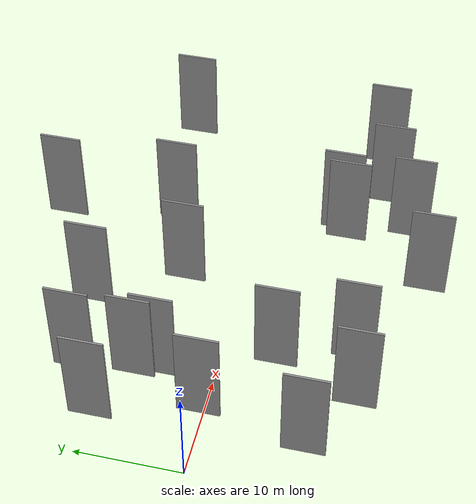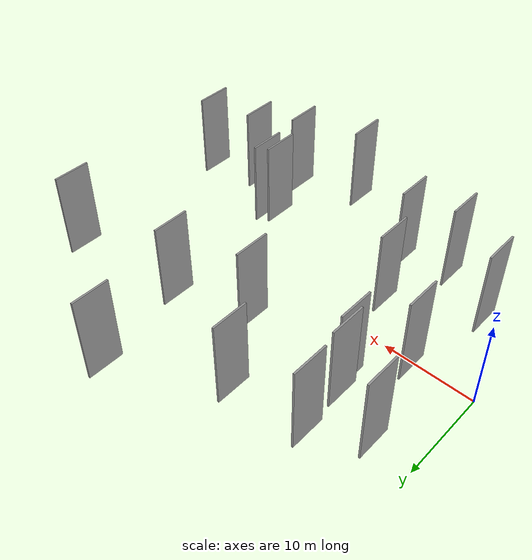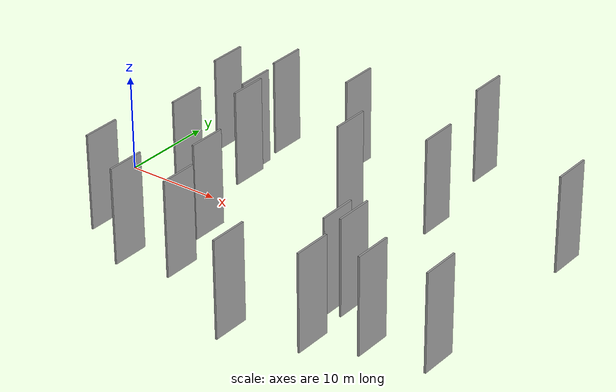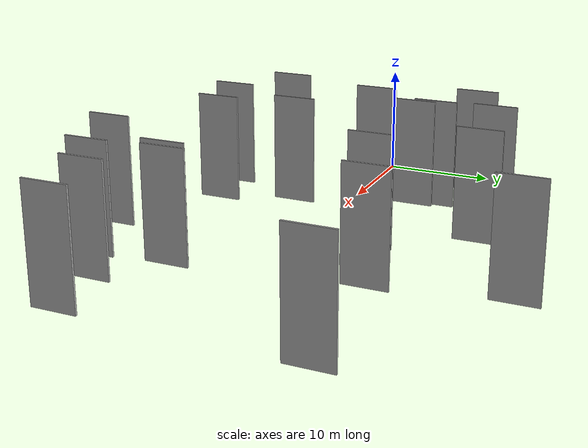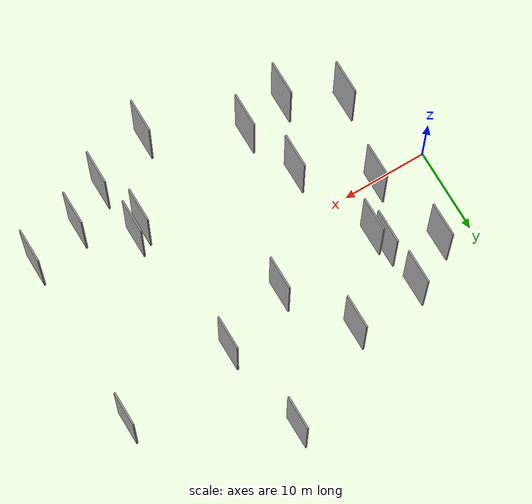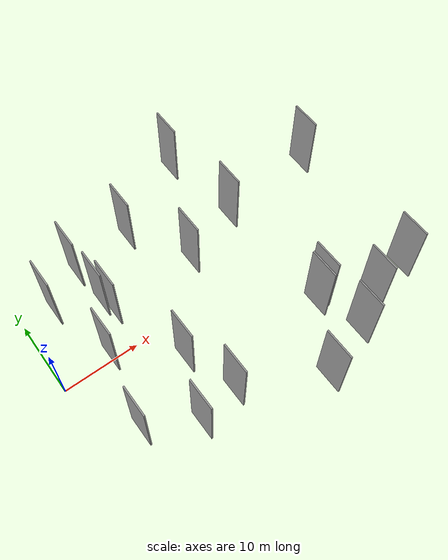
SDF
<sdf version="1.6">
 <world name="default">
  <scene>
   <sky><clouds><speed>12</speed></clouds></sky>
   <ambient>0.4 0.4 0.4 1</ambient>
   <background>0.7 0.7 0.7 1</background>
   <shadows>1</shadows>
  </scene>
  <gravity>0 0 -9.8066</gravity>
  <magnetic_field>6e-06 2.3e-05 -4.2e-05</magnetic_field>
  <physics default="0" name="default_physics" type="ode">
   <ode>
    <solver>
     <type>quick</type>
     <iters>10</iters>
     <sor>1.0</sor>
     <use_dynamic_moi_rescaling>0</use_dynamic_moi_rescaling>
    </solver>
    <constraints>
     <cfm>0</cfm>
     <erp>0.2</erp>
     <contact_max_correcting_vel>100</contact_max_correcting_vel>
     <contact_surface_layer>0.001</contact_surface_layer>
    </constraints>
   </ode>
   <max_step_size>0.004</max_step_size>
   <real_time_factor>1</real_time_factor>
   <real_time_update_rate>250</real_time_update_rate>
  </physics>
  <light name="sun" type="directional">
   <pose>0 0 10 0 0 0</pose>
   <diffuse>0.8 0.8 0.8 1</diffuse>
   <specular>0.2 0.2 0.2 1</specular>
   <attenuation>
    <range>1000</range>
    <constant>0.9</constant>
    <linear>0.01</linear>
    <quadratic>0.001</quadratic>
   </attenuation>
   <direction>-0.5 0.1 -0.9</direction>
  </light>
  <model name="grey_wall_1">
   <static>1</static>
   <pose>37.4713 -11.7446 0.0 0.000000 0.000000 1.570796</pose>
   <link name="link">
    <pose>0 0 5.00 0 0 0</pose>
    <collision name="collision"><geometry><box><size>4.00 0.2 10.00</size></box></geometry></collision>
    <visual name="visual">
     <cast_shadows>0</cast_shadows>
     <geometry><box><size>4.00 0.2 10.00</size></box></geometry>
     <material>
      <script>
       <uri>model://grey_wall/materials/scripts</uri>
       <uri>model://grey_wall/materials/textures</uri>
       <name>vrc/grey_wall</name>
      </script>
     </material>
    </visual>
   </link>
  </model>
  <model name="grey_wall_2">
   <static>1</static>
   <pose>31.2483 -8.3936 0.0 0.000000 0.000000 1.570796</pose>
   <link name="link">
    <pose>0 0 5.00 0 0 0</pose>
    <collision name="collision"><geometry><box><size>4.00 0.2 10.00</size></box></geometry></collision>
    <visual name="visual">
     <cast_shadows>0</cast_shadows>
     <geometry><box><size>4.00 0.2 10.00</size></box></geometry>
     <material>
      <script>
       <uri>model://grey_wall/materials/scripts</uri>
       <uri>model://grey_wall/materials/textures</uri>
       <name>vrc/grey_wall</name>
      </script>
     </material>
    </visual>
   </link>
  </model>
  <model name="grey_wall_3">
   <static>1</static>
   <pose>32.4895 -7.6483 0.0 0.000000 0.000000 1.570796</pose>
   <link name="link">
    <pose>0 0 5.00 0 0 0</pose>
    <collision name="collision"><geometry><box><size>4.00 0.2 10.00</size></box></geometry></collision>
    <visual name="visual">
     <cast_shadows>0</cast_shadows>
     <geometry><box><size>4.00 0.2 10.00</size></box></geometry>
     <material>
      <script>
       <uri>model://grey_wall/materials/scripts</uri>
       <uri>model://grey_wall/materials/textures</uri>
       <name>vrc/grey_wall</name>
      </script>
     </material>
    </visual>
   </link>
  </model>
  <model name="grey_wall_4">
   <static>1</static>
   <pose>43.5361 -10.4436 0.0 0.000000 0.000000 1.570796</pose>
   <link name="link">
    <pose>0 0 5.00 0 0 0</pose>
    <collision name="collision"><geometry><box><size>4.00 0.2 10.00</size></box></geometry></collision>
    <visual name="visual">
     <cast_shadows>0</cast_shadows>
     <geometry><box><size>4.00 0.2 10.00</size></box></geometry>
     <material>
      <script>
       <uri>model://grey_wall/materials/scripts</uri>
       <uri>model://grey_wall/materials/textures</uri>
       <name>vrc/grey_wall</name>
      </script>
     </material>
    </visual>
   </link>
  </model>
  <model name="grey_wall_5">
   <static>1</static>
   <pose>33.0475 -14.4032 0.0 0.000000 0.000000 1.570796</pose>
   <link name="link">
    <pose>0 0 5.00 0 0 0</pose>
    <collision name="collision"><geometry><box><size>4.00 0.2 10.00</size></box></geometry></collision>
    <visual name="visual">
     <cast_shadows>0</cast_shadows>
     <geometry><box><size>4.00 0.2 10.00</size></box></geometry>
     <material>
      <script>
       <uri>model://grey_wall/materials/scripts</uri>
       <uri>model://grey_wall/materials/textures</uri>
       <name>vrc/grey_wall</name>
      </script>
     </material>
    </visual>
   </link>
  </model>
  <model name="grey_wall_6">
   <static>1</static>
   <pose>22.1428 5.8418 0.0 0.000000 0.000000 1.570796</pose>
   <link name="link">
    <pose>0 0 5.00 0 0 0</pose>
    <collision name="collision"><geometry><box><size>4.00 0.2 10.00</size></box></geometry></collision>
    <visual name="visual">
     <cast_shadows>0</cast_shadows>
     <geometry><box><size>4.00 0.2 10.00</size></box></geometry>
     <material>
      <script>
       <uri>model://grey_wall/materials/scripts</uri>
       <uri>model://grey_wall/materials/textures</uri>
       <name>vrc/grey_wall</name>
      </script>
     </material>
    </visual>
   </link>
  </model>
  <model name="grey_wall_7">
   <static>1</static>
   <pose>6.6601 0.4806 0.0 0.000000 0.000000 1.570796</pose>
   <link name="link">
    <pose>0 0 5.00 0 0 0</pose>
    <collision name="collision"><geometry><box><size>4.00 0.2 10.00</size></box></geometry></collision>
    <visual name="visual">
     <cast_shadows>0</cast_shadows>
     <geometry><box><size>4.00 0.2 10.00</size></box></geometry>
     <material>
      <script>
       <uri>model://grey_wall/materials/scripts</uri>
       <uri>model://grey_wall/materials/textures</uri>
       <name>vrc/grey_wall</name>
      </script>
     </material>
    </visual>
   </link>
  </model>
  <model name="grey_wall_8">
   <static>1</static>
   <pose>13.7146 -4.9886 0.0 0.000000 0.000000 1.570796</pose>
   <link name="link">
    <pose>0 0 5.00 0 0 0</pose>
    <collision name="collision"><geometry><box><size>4.00 0.2 10.00</size></box></geometry></collision>
    <visual name="visual">
     <cast_shadows>0</cast_shadows>
     <geometry><box><size>4.00 0.2 10.00</size></box></geometry>
     <material>
      <script>
       <uri>model://grey_wall/materials/scripts</uri>
       <uri>model://grey_wall/materials/textures</uri>
       <name>vrc/grey_wall</name>
      </script>
     </material>
    </visual>
   </link>
  </model>
  <model name="grey_wall_9">
   <static>1</static>
   <pose>28.3567 19.8073 0.0 0.000000 0.000000 1.570796</pose>
   <link name="link">
    <pose>0 0 5.00 0 0 0</pose>
    <collision name="collision"><geometry><box><size>4.00 0.2 10.00</size></box></geometry></collision>
    <visual name="visual">
     <cast_shadows>0</cast_shadows>
     <geometry><box><size>4.00 0.2 10.00</size></box></geometry>
     <material>
      <script>
       <uri>model://grey_wall/materials/scripts</uri>
       <uri>model://grey_wall/materials/textures</uri>
       <name>vrc/grey_wall</name>
      </script>
     </material>
    </visual>
   </link>
  </model>
  <model name="grey_wall_10">
   <static>1</static>
   <pose>4.6491 -9.3726 0.0 0.000000 0.000000 1.570796</pose>
   <link name="link">
    <pose>0 0 5.00 0 0 0</pose>
    <collision name="collision"><geometry><box><size>4.00 0.2 10.00</size></box></geometry></collision>
    <visual name="visual">
     <cast_shadows>0</cast_shadows>
     <geometry><box><size>4.00 0.2 10.00</size></box></geometry>
     <material>
      <script>
       <uri>model://grey_wall/materials/scripts</uri>
       <uri>model://grey_wall/materials/textures</uri>
       <name>vrc/grey_wall</name>
      </script>
     </material>
    </visual>
   </link>
  </model>
  <model name="grey_wall_11">
   <static>1</static>
   <pose>15.9942 -11.7543 0.0 0.000000 0.000000 1.570796</pose>
   <link name="link">
    <pose>0 0 5.00 0 0 0</pose>
    <collision name="collision"><geometry><box><size>4.00 0.2 10.00</size></box></geometry></collision>
    <visual name="visual">
     <cast_shadows>0</cast_shadows>
     <geometry><box><size>4.00 0.2 10.00</size></box></geometry>
     <material>
      <script>
       <uri>model://grey_wall/materials/scripts</uri>
       <uri>model://grey_wall/materials/textures</uri>
       <name>vrc/grey_wall</name>
      </script>
     </material>
    </visual>
   </link>
  </model>
  <model name="grey_wall_12">
   <static>1</static>
   <pose>30.2491 8.6233 0.0 0.000000 0.000000 1.570796</pose>
   <link name="link">
    <pose>0 0 5.00 0 0 0</pose>
    <collision name="collision"><geometry><box><size>4.00 0.2 10.00</size></box></geometry></collision>
    <visual name="visual">
     <cast_shadows>0</cast_shadows>
     <geometry><box><size>4.00 0.2 10.00</size></box></geometry>
     <material>
      <script>
       <uri>model://grey_wall/materials/scripts</uri>
       <uri>model://grey_wall/materials/textures</uri>
       <name>vrc/grey_wall</name>
      </script>
     </material>
    </visual>
   </link>
  </model>
  <model name="grey_wall_13">
   <static>1</static>
   <pose>26.0266 -17.0154 0.0 0.000000 0.000000 1.570796</pose>
   <link name="link">
    <pose>0 0 5.00 0 0 0</pose>
    <collision name="collision"><geometry><box><size>4.00 0.2 10.00</size></box></geometry></collision>
    <visual name="visual">
     <cast_shadows>0</cast_shadows>
     <geometry><box><size>4.00 0.2 10.00</size></box></geometry>
     <material>
      <script>
       <uri>model://grey_wall/materials/scripts</uri>
       <uri>model://grey_wall/materials/textures</uri>
       <name>vrc/grey_wall</name>
      </script>
     </material>
    </visual>
   </link>
  </model>
  <model name="grey_wall_14">
   <static>1</static>
   <pose>9.5945 7.3463 0.0 0.000000 0.000000 1.570796</pose>
   <link name="link">
    <pose>0 0 5.00 0 0 0</pose>
    <collision name="collision"><geometry><box><size>4.00 0.2 10.00</size></box></geometry></collision>
    <visual name="visual">
     <cast_shadows>0</cast_shadows>
     <geometry><box><size>4.00 0.2 10.00</size></box></geometry>
     <material>
      <script>
       <uri>model://grey_wall/materials/scripts</uri>
       <uri>model://grey_wall/materials/textures</uri>
       <name>vrc/grey_wall</name>
      </script>
     </material>
    </visual>
   </link>
  </model>
  <model name="grey_wall_15">
   <static>1</static>
   <pose>17.3526 13.6794 0.0 0.000000 0.000000 1.570796</pose>
   <link name="link">
    <pose>0 0 5.00 0 0 0</pose>
    <collision name="collision"><geometry><box><size>4.00 0.2 10.00</size></box></geometry></collision>
    <visual name="visual">
     <cast_shadows>0</cast_shadows>
     <geometry><box><size>4.00 0.2 10.00</size></box></geometry>
     <material>
      <script>
       <uri>model://grey_wall/materials/scripts</uri>
       <uri>model://grey_wall/materials/textures</uri>
       <name>vrc/grey_wall</name>
      </script>
     </material>
    </visual>
   </link>
  </model>
  <model name="grey_wall_16">
   <static>1</static>
   <pose>43.7637 10.0674 0.0 0.000000 0.000000 1.570796</pose>
   <link name="link">
    <pose>0 0 5.00 0 0 0</pose>
    <collision name="collision"><geometry><box><size>4.00 0.2 10.00</size></box></geometry></collision>
    <visual name="visual">
     <cast_shadows>0</cast_shadows>
     <geometry><box><size>4.00 0.2 10.00</size></box></geometry>
     <material>
      <script>
       <uri>model://grey_wall/materials/scripts</uri>
       <uri>model://grey_wall/materials/textures</uri>
       <name>vrc/grey_wall</name>
      </script>
     </material>
    </visual>
   </link>
  </model>
  <model name="grey_wall_17">
   <static>1</static>
   <pose>4.1692 9.7640 0.0 0.000000 0.000000 1.570796</pose>
   <link name="link">
    <pose>0 0 5.00 0 0 0</pose>
    <collision name="collision"><geometry><box><size>4.00 0.2 10.00</size></box></geometry></collision>
    <visual name="visual">
     <cast_shadows>0</cast_shadows>
     <geometry><box><size>4.00 0.2 10.00</size></box></geometry>
     <material>
      <script>
       <uri>model://grey_wall/materials/scripts</uri>
       <uri>model://grey_wall/materials/textures</uri>
       <name>vrc/grey_wall</name>
      </script>
     </material>
    </visual>
   </link>
  </model>
  <model name="grey_wall_18">
   <static>1</static>
   <pose>10.1768 5.4675 0.0 0.000000 0.000000 1.570796</pose>
   <link name="link">
    <pose>0 0 5.00 0 0 0</pose>
    <collision name="collision"><geometry><box><size>4.00 0.2 10.00</size></box></geometry></collision>
    <visual name="visual">
     <cast_shadows>0</cast_shadows>
     <geometry><box><size>4.00 0.2 10.00</size></box></geometry>
     <material>
      <script>
       <uri>model://grey_wall/materials/scripts</uri>
       <uri>model://grey_wall/materials/textures</uri>
       <name>vrc/grey_wall</name>
      </script>
     </material>
    </visual>
   </link>
  </model>
  <model name="grey_wall_19">
   <static>1</static>
   <pose>9.1594 12.8045 0.0 0.000000 0.000000 1.570796</pose>
   <link name="link">
    <pose>0 0 5.00 0 0 0</pose>
    <collision name="collision"><geometry><box><size>4.00 0.2 10.00</size></box></geometry></collision>
    <visual name="visual">
     <cast_shadows>0</cast_shadows>
     <geometry><box><size>4.00 0.2 10.00</size></box></geometry>
     <material>
      <script>
       <uri>model://grey_wall/materials/scripts</uri>
       <uri>model://grey_wall/materials/textures</uri>
       <name>vrc/grey_wall</name>
      </script>
     </material>
    </visual>
   </link>
  </model>
  <model name="grey_wall_20">
   <static>1</static>
   <pose>10.6747 -12.8249 0.0 0.000000 0.000000 1.570796</pose>
   <link name="link">
    <pose>0 0 5.00 0 0 0</pose>
    <collision name="collision"><geometry><box><size>4.00 0.2 10.00</size></box></geometry></collision>
    <visual name="visual">
     <cast_shadows>0</cast_shadows>
     <geometry><box><size>4.00 0.2 10.00</size></box></geometry>
     <material>
      <script>
       <uri>model://grey_wall/materials/scripts</uri>
       <uri>model://grey_wall/materials/textures</uri>
       <name>vrc/grey_wall</name>
      </script>
     </material>
    </visual>
   </link>
  </model>
 </world>
</sdf>
